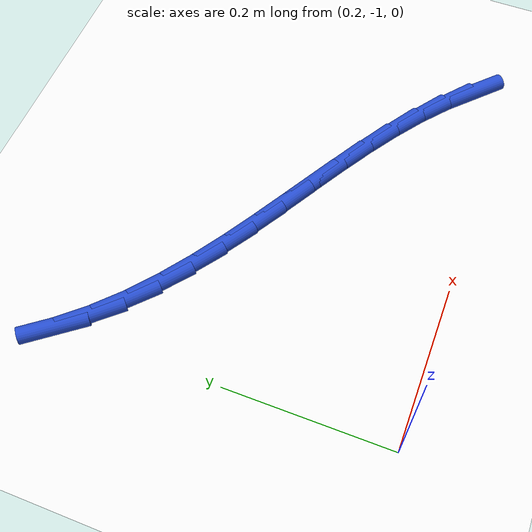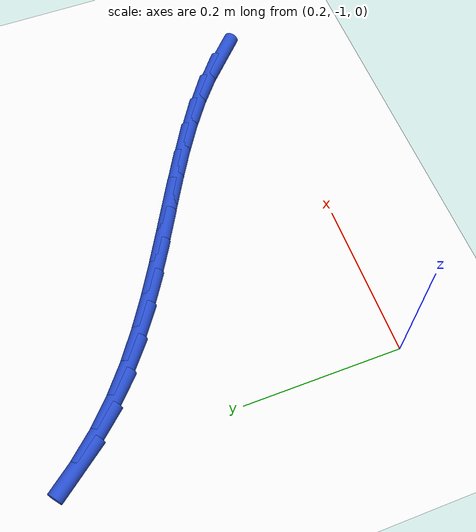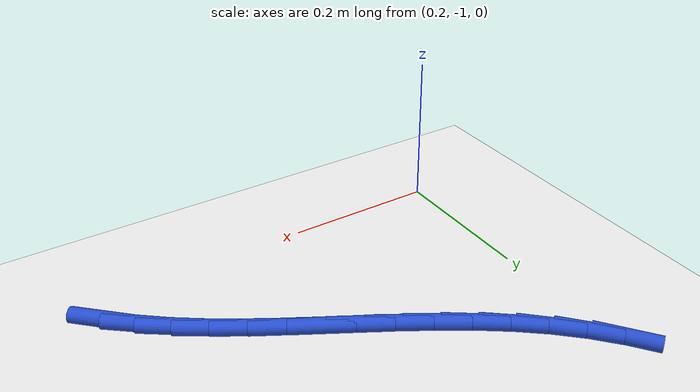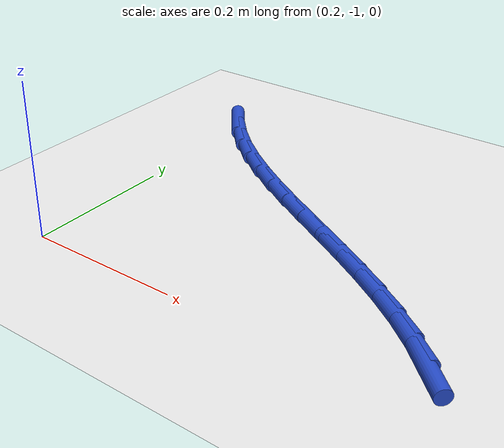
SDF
<sdf version="1.6">
 <world name="default">
  <model name="ground_plane">
   <static>1</static>
   <link name="link">
    <collision name="collision">
     <geometry><plane><normal>0 0 1</normal><size>100 100</size></plane></geometry>
     <surface><friction><ode><mu>100</mu><mu2>50</mu2></ode></friction></surface>
    </collision>
    <visual name="visual">
     <cast_shadows>0</cast_shadows>
     <geometry><plane><normal>0 0 1</normal><size>100 100</size></plane></geometry>
     <material>
      <script><uri>file://media/materials/scripts/gazebo.material</uri><name>Gazebo/WhiteGlow</name></script>
     </material>
    </visual>
   </link>
  </model>
  <model name="line">
   <link name="link_151">
    <pose>0.6866564674254922 -0.9525657960730418 0.01 0 1.57 -0.766981882252633</pose>
    <collision name="collision">
     <geometry><cylinder><radius>0.01</radius><length>0.08</length></cylinder></geometry>
    </collision>
    <visual name="visual">
     <material>
      <script><name>Gazebo/Blue</name><uri>file://media/materials/scripts/gazebo.material</uri></script>
     </material>
     <geometry><cylinder><radius>0.01</radius><length>0.08</length></cylinder></geometry>
    </visual>
   </link>
   <link name="link_152">
    <pose>0.6570528364366974 -0.924032943959479 0.01 0 1.57 -0.6853177105561595</pose>
    <collision name="collision">
     <geometry><cylinder><radius>0.01</radius><length>0.08</length></cylinder></geometry>
    </collision>
    <visual name="visual">
     <material>
      <script><name>Gazebo/Blue</name><uri>file://media/materials/scripts/gazebo.material</uri></script>
     </material>
     <geometry><cylinder><radius>0.01</radius><length>0.08</length></cylinder></geometry>
    </visual>
   </link>
   <link name="link_153">
    <pose>0.6246995084692265 -0.8975842736577913 0.01 0 1.57 -0.6206604220965168</pose>
    <collision name="collision">
     <geometry><cylinder><radius>0.01</radius><length>0.08</length></cylinder></geometry>
    </collision>
    <visual name="visual">
     <material>
      <script><name>Gazebo/Blue</name><uri>file://media/materials/scripts/gazebo.material</uri></script>
     </material>
     <geometry><cylinder><radius>0.01</radius><length>0.08</length></cylinder></geometry>
    </visual>
   </link>
   <link name="link_154">
    <pose>0.5900744230166285 -0.8728305752147892 0.01 0 1.57 -0.572032421119626</pose>
    <collision name="collision">
     <geometry><cylinder><radius>0.01</radius><length>0.08</length></cylinder></geometry>
    </collision>
    <visual name="visual">
     <material>
      <script><name>Gazebo/Blue</name><uri>file://media/materials/scripts/gazebo.material</uri></script>
     </material>
     <geometry><cylinder><radius>0.01</radius><length>0.08</length></cylinder></geometry>
    </visual>
   </link>
   <link name="link_155">
    <pose>0.5536555195724553 -0.8493826386772844 0.01 0 1.57 -0.5382833696089502</pose>
    <collision name="collision">
     <geometry><cylinder><radius>0.01</radius><length>0.08</length></cylinder></geometry>
    </collision>
    <visual name="visual">
     <material>
      <script><name>Gazebo/Blue</name><uri>file://media/materials/scripts/gazebo.material</uri></script>
     </material>
     <geometry><cylinder><radius>0.01</radius><length>0.08</length></cylinder></geometry>
    </visual>
   </link>
   <link name="link_156">
    <pose>0.515920737630256 -0.8268512540920866 0.01 0 1.57 -0.5184126864749294</pose>
    <collision name="collision">
     <geometry><cylinder><radius>0.01</radius><length>0.08</length></cylinder></geometry>
    </collision>
    <visual name="visual">
     <material>
      <script><name>Gazebo/Blue</name><uri>file://media/materials/scripts/gazebo.material</uri></script>
     </material>
     <geometry><cylinder><radius>0.01</radius><length>0.08</length></cylinder></geometry>
    </visual>
   </link>
   <link name="link_157">
    <pose>0.4773480166835809 -0.8048472115060066 0.01 0 1.57 -0.5117307993571549</pose>
    <collision name="collision">
     <geometry><cylinder><radius>0.01</radius><length>0.08</length></cylinder></geometry>
    </collision>
    <visual name="visual">
     <material>
      <script><name>Gazebo/Blue</name><uri>file://media/materials/scripts/gazebo.material</uri></script>
     </material>
     <geometry><cylinder><radius>0.01</radius><length>0.08</length></cylinder></geometry>
    </visual>
   </link>
   <link name="link_158">
    <pose>0.43841529622597997 -0.7829813009658547 0.01 0 1.57 -0.5179239113511512</pose>
    <collision name="collision">
     <geometry><cylinder><radius>0.01</radius><length>0.08</length></cylinder></geometry>
    </collision>
    <visual name="visual">
     <material>
      <script><name>Gazebo/Blue</name><uri>file://media/materials/scripts/gazebo.material</uri></script>
     </material>
     <geometry><cylinder><radius>0.01</radius><length>0.08</length></cylinder></geometry>
    </visual>
   </link>
   <link name="link_159">
    <pose>0.3996005157510027 -0.7608643125184414 0.01 0 1.57 -0.5370639445305363</pose>
    <collision name="collision">
     <geometry><cylinder><radius>0.01</radius><length>0.08</length></cylinder></geometry>
    </collision>
    <visual name="visual">
     <material>
      <script><name>Gazebo/Blue</name><uri>file://media/materials/scripts/gazebo.material</uri></script>
     </material>
     <geometry><cylinder><radius>0.01</radius><length>0.08</length></cylinder></geometry>
    </visual>
   </link>
   <link name="link_160">
    <pose>0.3613816147522007 -0.7381070362105783 0.01 0 1.57 -0.5695790301324972</pose>
    <collision name="collision">
     <geometry><cylinder><radius>0.01</radius><length>0.08</length></cylinder></geometry>
    </collision>
    <visual name="visual">
     <material>
      <script><name>Gazebo/Blue</name><uri>file://media/materials/scripts/gazebo.material</uri></script>
     </material>
     <geometry><cylinder><radius>0.01</radius><length>0.08</length></cylinder></geometry>
    </visual>
   </link>
   <link name="link_161">
    <pose>0.3242365327231233 -0.7143202620890748 0.01 0 1.57 -0.616176152086085</pose>
    <collision name="collision">
     <geometry><cylinder><radius>0.01</radius><length>0.08</length></cylinder></geometry>
    </collision>
    <visual name="visual">
     <material>
      <script><name>Gazebo/Blue</name><uri>file://media/materials/scripts/gazebo.material</uri></script>
     </material>
     <geometry><cylinder><radius>0.01</radius><length>0.08</length></cylinder></geometry>
    </visual>
   </link>
   <link name="link_162">
    <pose>0.2886432091573206 -0.6891147802007428 0.01 0 1.57 -0.6776861271723288</pose>
    <collision name="collision">
     <geometry><cylinder><radius>0.01</radius><length>0.08</length></cylinder></geometry>
    </collision>
    <visual name="visual">
     <material>
      <script><name>Gazebo/Blue</name><uri>file://media/materials/scripts/gazebo.material</uri></script>
     </material>
     <geometry><cylinder><radius>0.01</radius><length>0.08</length></cylinder></geometry>
    </visual>
   </link>
   <link name="link_163">
    <pose>0.25507958354834287 -0.6621013805923917 0.01 0 1.57 -0.7546556266799451</pose>
    <collision name="collision">
     <geometry><cylinder><radius>0.01</radius><length>0.08</length></cylinder></geometry>
    </collision>
    <visual name="visual">
     <material>
      <script><name>Gazebo/Blue</name><uri>file://media/materials/scripts/gazebo.material</uri></script>
     </material>
     <geometry><cylinder><radius>0.01</radius><length>0.08</length></cylinder></geometry>
    </visual>
   </link>
   <link name="link_164">
    <pose>0.22401955236128843 -0.6328946853568235 0.01 0 1.57 -0.8390805636062221</pose>
    <collision name="collision">
     <geometry><cylinder><radius>0.01</radius><length>0.08</length></cylinder></geometry>
    </collision>
    <visual name="visual">
     <material>
      <script><name>Gazebo/Blue</name><uri>file://media/materials/scripts/gazebo.material</uri></script>
     </material>
     <geometry><cylinder><radius>0.01</radius><length>0.08</length></cylinder></geometry>
    </visual>
   </link>
   <link name="link_165">
    <pose>0.19568791963252202 -0.6013454103107332 0.01 0 1.57 -0.9175854297224767</pose>
    <collision name="collision">
     <geometry><cylinder><radius>0.01</radius><length>0.08</length></cylinder></geometry>
    </collision>
    <visual name="visual">
     <material>
      <script><name>Gazebo/Blue</name><uri>file://media/materials/scripts/gazebo.material</uri></script>
     </material>
     <geometry><cylinder><radius>0.01</radius><length>0.08</length></cylinder></geometry>
    </visual>
   </link>
  </model>
 </world>
</sdf>
